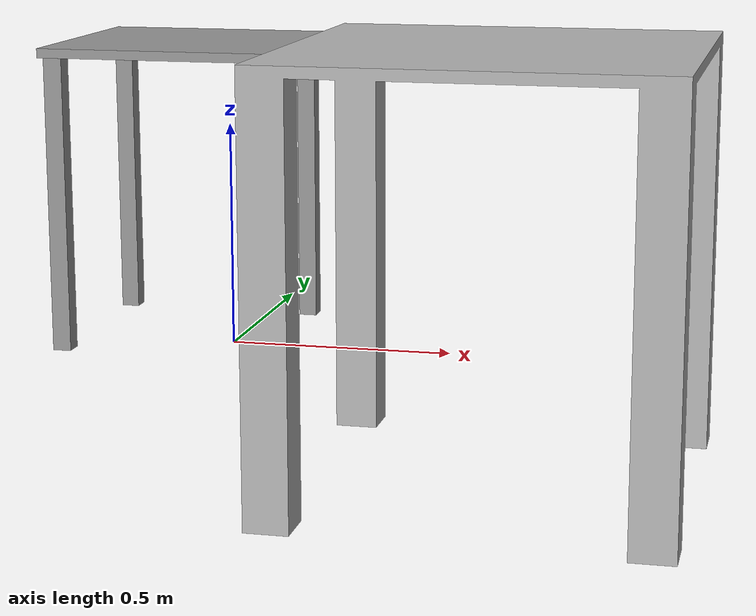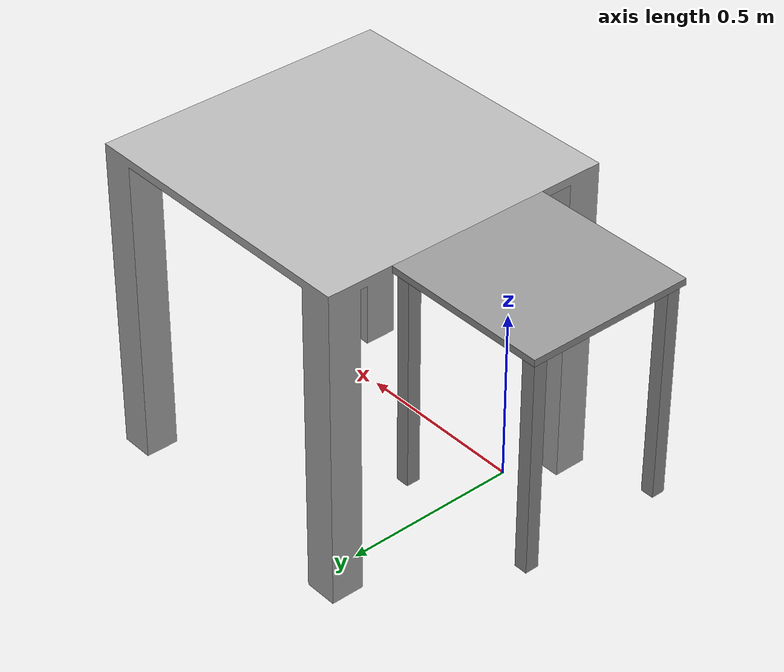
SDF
<sdf version="1.6">
 <world name="ur3_cubes">
  <gravity>0 0 -9.81</gravity>
  <physics name="default_physics" default="0" type="ode">
   <max_step_size>0.001</max_step_size>
   <real_time_factor>1</real_time_factor>
   <real_time_update_rate>1000</real_time_update_rate>
  </physics>
  <plugin name="ros_link_attacher_plugin" filename="libgazebo_ros_link_attacher.so"/>
  <scene><ambient>0.4 0.4 0.4 1</ambient><background>0.40 0.43 0.67 1</background><shadows>1</shadows></scene>
  <include><uri>model://sun</uri></include>
  <model name="ur_base"><include><uri>model://ur_base</uri><pose>-0.1 0 0 0 0 0</pose></include></model>
  <include><uri>model://task_table</uri><pose>0.60 0 0.66 0 0 0</pose></include>
 </world>
</sdf>

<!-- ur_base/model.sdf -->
<sdf version="1.6">
  <model name="ur_base">
    <static>true</static>

    <link name="top_plate">
      <pose>0 0 0.67501 0 0 0</pose>
      <collision name="top_plate_collision">
        <geometry>
          <box>
            <size>0.5 0.5 0.02</size>
          </box>
        </geometry>
        <surface>
          <contact>
            <collide_bitmask>0x01</collide_bitmask>
          </contact>
        </surface>
      </collision>
      <visual name="top_plate_visual">
        <geometry>
          <box>
            <size>0.5 0.5 0.02</size>
          </box>
        </geometry>
        <material>
          <script>
            <uri>file://media/materials/scripts/gazebo.material</uri>
            <name>Gazebo/Grey</name>
          </script>
        </material>
      </visual>
    </link>
    <link name="leg1">
      <pose>0.22 0.22 0.35 0 0 0</pose>
      <visual name="leg1_visual">
        <geometry>
          <box>
            <size>0.04 0.04 0.655</size>
          </box>
        </geometry>
        <material>
          <script>
            <uri>file://media/materials/scripts/gazebo.material</uri>
            <name>Gazebo/Grey</name>
          </script>
        </material>
      </visual>
    </link>
    <link name="leg2">
      <pose>-0.22 0.22 0.35 0 0 0</pose>
      <visual name="leg2_visual">
        <geometry>
          <box>
            <size>0.04 0.04 0.655</size>
          </box>
        </geometry>
        <material>
          <script>
            <uri>file://media/materials/scripts/gazebo.material</uri>
            <name>Gazebo/Grey</name>
          </script>
        </material>
      </visual>
    </link>
    <link name="leg3">
      <pose>0.22 -0.22 0.35 0 0 0</pose>
      <visual name="leg3_visual">
        <geometry>
          <box>
            <size>0.04 0.04 0.655</size>
          </box>
        </geometry>
        <material>
          <script>
            <uri>file://media/materials/scripts/gazebo.material</uri>
            <name>Gazebo/Grey</name>
          </script>
        </material>
      </visual>
    </link>
    <link name="leg4">
      <pose>-0.22 -0.22 0.35 0 0 0</pose>
      <visual name="leg4_visual">
        <geometry>
          <box>
            <size>0.04 0.04 0.655</size>
          </box>
        </geometry>
        <material>
          <script>
            <uri>file://media/materials/scripts/gazebo.material</uri>
            <name>Gazebo/Grey</name>
          </script>
        </material>
      </visual>
    </link>
  </model>
</sdf>

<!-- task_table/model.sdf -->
<sdf version='1.6'>
  <model name='task_table'>
    <static>true</static>
    <link name='cafe_table::link'>
      <pose frame=''>0 0 0 0 -0 0</pose>
      <self_collide>0</self_collide>
      <kinematic>0</kinematic>
      <gravity>1</gravity>
      <inertial>
        <mass>1</mass>
        <pose frame=''>0 0 0 0 -0 0</pose>
        <inertia>
          <ixx>1</ixx>
          <ixy>0</ixy>
          <ixz>0</ixz>
          <iyy>1</iyy>
          <iyz>0</iyz>
          <izz>1</izz>
        </inertia>
      </inertial>
      <visual name='visual'>
        <geometry>
          <mesh>
            <uri>model://task_table/meshes/task_table.dae</uri>
            <scale>1 1 1</scale>
          </mesh>
        </geometry>
        <material>
          <script>
            <uri>model://task_table/materials/scripts</uri>
            <uri>model://task_table/materials/textures</uri>
            <name>RepeatedTexture</name>
          </script>
        </material>
        <pose frame=''>0 0 0 0 -0 0</pose>
        <cast_shadows>1</cast_shadows>
        <transparency>0</transparency>
      </visual>
      <collision name='collision'>
        <laser_retro>0</laser_retro>
        <max_contacts>10</max_contacts>
        <pose frame=''>0 0 0 0 -0 0</pose>
        <geometry>
          <mesh>
            <uri>model://task_table/meshes/task_table.stl</uri>
            <scale>1 1 1</scale>
          </mesh>
        </geometry>
        <surface>
          <friction>
            <ode>
              <mu>1</mu>
              <mu2>1</mu2>
              <fdir1>0 0 0</fdir1>
              <slip1>0</slip1>
              <slip2>0</slip2>
            </ode>
            <torsional>
              <coefficient>1</coefficient>
              <patch_radius>0</patch_radius>
              <surface_radius>0</surface_radius>
              <use_patch_radius>1</use_patch_radius>
              <ode>
                <slip>0</slip>
              </ode>
            </torsional>
          </friction>
          <bounce>
            <restitution_coefficient>0</restitution_coefficient>
            <threshold>1e+06</threshold>
          </bounce>
          <contact>
            <collide_without_contact>0</collide_without_contact>
            <collide_without_contact_bitmask>1</collide_without_contact_bitmask>
            <collide_bitmask>1</collide_bitmask>
            <ode>
              <soft_cfm>0</soft_cfm>
              <soft_erp>0.2</soft_erp>
              <kp>1e+13</kp>
              <kd>1</kd>
              <max_vel>0.01</max_vel>
              <min_depth>0</min_depth>
            </ode>
            <bullet>
              <split_impulse>1</split_impulse>
              <split_impulse_penetration_threshold>-0.01</split_impulse_penetration_threshold>
              <soft_cfm>0</soft_cfm>
              <soft_erp>0.2</soft_erp>
              <kp>1e+13</kp>
              <kd>1</kd>
            </bullet>
          </contact>
        </surface>
      </collision>
    </link>
    <static>1</static>
    <allow_auto_disable>1</allow_auto_disable>
    <pose frame=''>0 0 0 0 -0 0</pose>
  </model>
</sdf>
